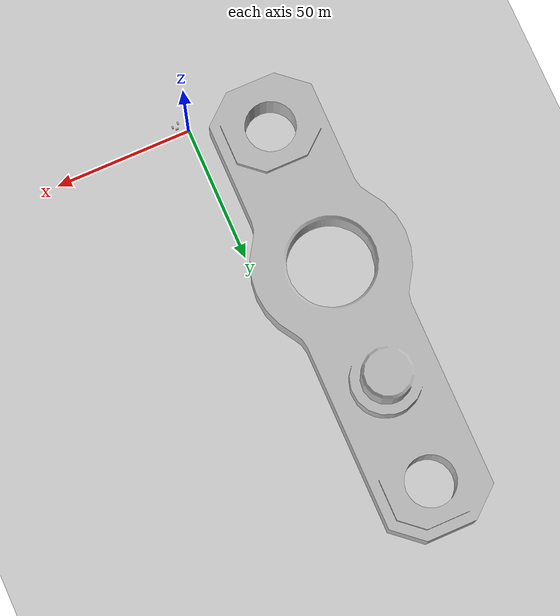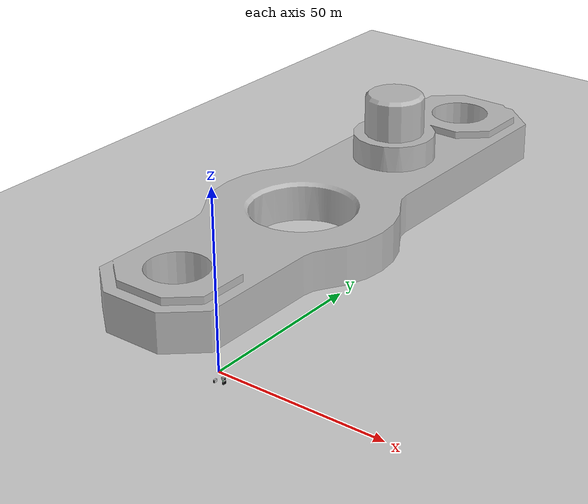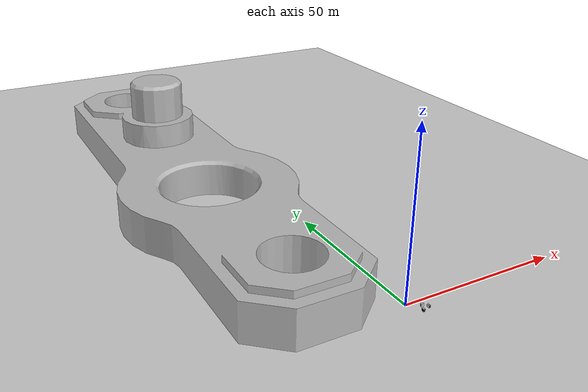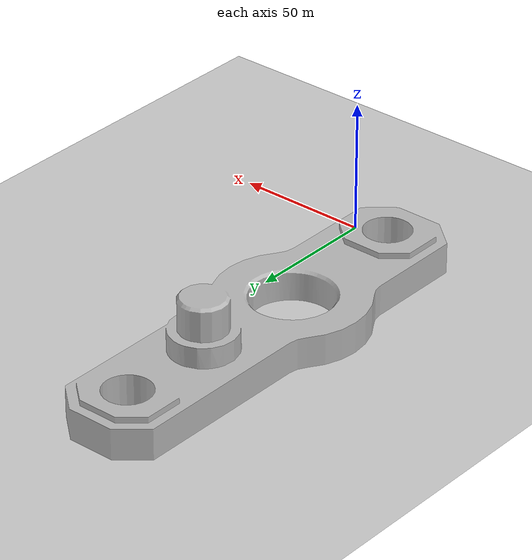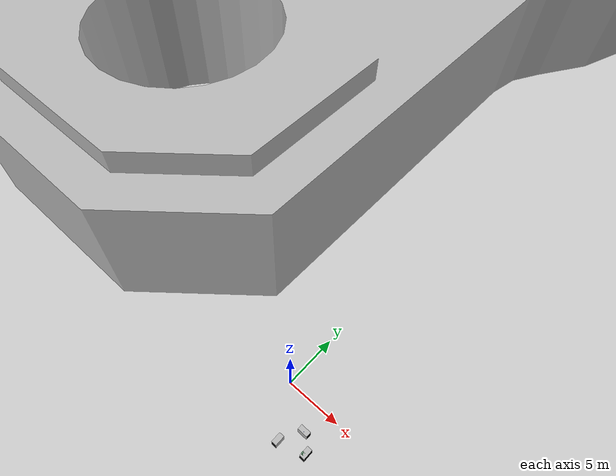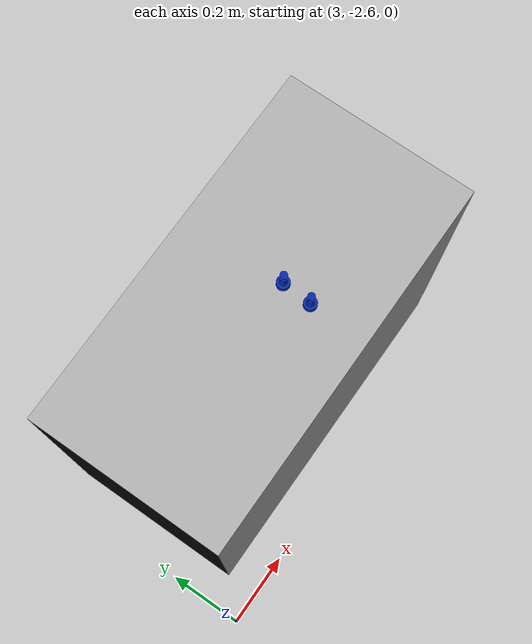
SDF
<sdf version="1.4">
 <world name="default">
  <include><uri>model://ground_plane</uri></include>
  <include>
   <uri>model://caddy_green</uri>
   <name>caddy_green1</name>
   <pose>4.609024 -3.594681 0.814290 0 0 0</pose>
  </include>
  <include>
   <uri>model://gearbox_bolt</uri>
   <name>gearbox_bolt1</name>
   <pose>3.604571 -2.373102 0.81 0 0 0</pose>
  </include>
  <include>
   <uri>model://gearbox_bolt</uri>
   <name>gearbox_bolt2</name>
   <pose>3.609393 -2.302640 0.81 0 0 0</pose>
  </include>
  <include>
   <uri>model://gearbox_top</uri>
   <name>gearbox_top1</name>
   <pose>2.497005 -4.123425 0.977855 0 0 1.57</pose>
  </include>
  <include>
   <uri>model://fetchit_table</uri>
   <name>screw_bin_pick_station</name>
   <pose>3.54929 -2.27837 0.0 0 0 0</pose>
  </include>
  <include>
   <uri>model://fetchit_table</uri>
   <name>kit_station</name>
   <pose>4.73491 -3.41284 0.0 0 0 -1.57</pose>
  </include>
  <include>
   <uri>model://fetchit_table</uri>
   <name>gearbox_pick_station</name>
   <pose>2.47048 -4.10962 0.0 0 0 1.57</pose>
  </include>
  <light name="user_point_light_0" type="point">
   <pose>5.3 -3.3 4.0 0 0 0</pose>
   <diffuse>0.2 0.2 0.2 1</diffuse>
   <specular>0.1 0.1 0.1 1</specular>
   <attenuation>
    <range>10</range>
    <constant>0.5</constant>
    <linear>0.01</linear>
    <quadratic>0.001</quadratic>
   </attenuation>
   <cast_shadows>0</cast_shadows>
   <direction>0 0 -1</direction>
  </light>
  <light name="user_point_light_1" type="point">
   <pose>2.0 -3.3 4.0 0 0 0</pose>
   <diffuse>0.2 0.2 0.2 1</diffuse>
   <specular>0.1 0.1 0.1 1</specular>
   <attenuation>
    <range>10</range>
    <constant>0.5</constant>
    <linear>0.01</linear>
    <quadratic>0.001</quadratic>
   </attenuation>
   <cast_shadows>0</cast_shadows>
   <direction>0 0 -1</direction>
  </light>
  <light name="user_point_light_2" type="point">
   <pose>-2.0 -3.3 4.0 0 0 0</pose>
   <diffuse>0.2 0.2 0.2 1</diffuse>
   <specular>0.1 0.1 0.1 1</specular>
   <attenuation>
    <range>10</range>
    <constant>0.5</constant>
    <linear>0.01</linear>
    <quadratic>0.001</quadratic>
   </attenuation>
   <cast_shadows>0</cast_shadows>
   <direction>0 0 -1</direction>
  </light>
  <light name="user_point_light_3" type="point">
   <pose>-5.3 -3.3 4.0 0 -0 0</pose>
   <diffuse>0.2 0.2 0.2 1</diffuse>
   <specular>0.1 0.1 0.1 1</specular>
   <attenuation>
    <range>10.0</range>
    <constant>0.5</constant>
    <linear>0.01</linear>
    <quadratic>0.001</quadratic>
   </attenuation>
   <cast_shadows>0</cast_shadows>
   <direction>0 0 -1</direction>
  </light>
  <light name="user_point_light_4" type="point">
   <pose>5.3 3.3 4.0 0 0 0</pose>
   <diffuse>0.2 0.2 0.2 1</diffuse>
   <specular>0.1 0.1 0.1 1</specular>
   <attenuation>
    <range>10.0</range>
    <constant>0.5</constant>
    <linear>0.01</linear>
    <quadratic>0.001</quadratic>
   </attenuation>
   <cast_shadows>0</cast_shadows>
   <direction>0 0 -1</direction>
  </light>
  <light name="user_point_light_5" type="point">
   <pose>2.0 3.3 4.0 0 0 0</pose>
   <diffuse>0.2 0.2 0.2 1</diffuse>
   <specular>0.1 0.1 0.1 1</specular>
   <attenuation>
    <range>10</range>
    <constant>0.5</constant>
    <linear>0.01</linear>
    <quadratic>0.001</quadratic>
   </attenuation>
   <cast_shadows>0</cast_shadows>
   <direction>0 0 -1</direction>
  </light>
  <light name="user_point_light_6" type="point">
   <pose>-2.0 3.3 4.0 0 0 0</pose>
   <diffuse>0.2 0.2 0.2 1</diffuse>
   <specular>0.1 0.1 0.1 1</specular>
   <attenuation>
    <range>10</range>
    <constant>0.5</constant>
    <linear>0.01</linear>
    <quadratic>0.001</quadratic>
   </attenuation>
   <cast_shadows>0</cast_shadows>
   <direction>0 0 -1</direction>
  </light>
  <light name="user_point_light_7" type="point">
   <pose>-5.3 3.3 4.0 0 -0 0</pose>
   <diffuse>0.2 0.2 0.2 1</diffuse>
   <specular>0.1 0.1 0.1 1</specular>
   <attenuation>
    <range>10</range>
    <constant>0.5</constant>
    <linear>0.01</linear>
    <quadratic>0.001</quadratic>
   </attenuation>
   <cast_shadows>0</cast_shadows>
   <direction>0 0 -1</direction>
  </light>
 </world>
</sdf>

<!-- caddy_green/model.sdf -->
<sdf version='1.4'>
  <model name="caddy_green">
      <static>0</static>
      <link name='link'>
        <inertial>
          <mass>0.0680389</mass>
          <inertia>
            <ixx>0.00040636575898</ixx>
            <ixy>0.000000</ixy>
            <ixz>0.000000</ixz>
            <iyy>0.00040636575898</iyy>
            <iyz>0.000000</iyz>
            <izz>0.000625974918075</izz>
          </inertia>
        </inertial>
        <collision name='collision'>
          <geometry>
            <mesh>
              <uri>model://romanoff_small_utility_caddy/meshes/Romanoff_Small_Utility_Caddy_cof.stl</uri>
              <scale>1 1 1</scale>
            </mesh>
          </geometry>
          <surface>
            <friction>
              <ode>
                <mu>1.0</mu>
                <mu2>1.0</mu2>
              </ode>
            </friction>
          </surface>
        </collision>

        <visual name='visual'>
          <geometry>
            <mesh>
              <uri>model://romanoff_small_utility_caddy/meshes/Romanoff_Small_Utility_Caddy_cof_green.dae</uri>
              <scale>1 1 1</scale>
            </mesh>
          </geometry>
        </visual>
        <velocity_decay>
          <linear>0.000000</linear>
          <angular>0.000000</angular>
        </velocity_decay>
        <self_collide>0</self_collide>
        <kinematic>0</kinematic>
        <gravity>1</gravity>
      </link>
  </model>
</sdf>

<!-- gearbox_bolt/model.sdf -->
<sdf version='1.4'>
  <model name="gearbox_bolt">
      <static>0</static>
      <link name='link'>
        <inertial>
          <mass>0.0592855</mass>
          <inertia>
            <ixx>2.31818050784e-05</ixx>
            <ixy>0.000000</ixy>
            <ixz>0.000000</ixz>
            <iyy>2.31851837098e-05</iyy>
            <iyz>0.000000</iyz>
            <izz>8.88944636856e-06</izz>
          </inertia>
        </inertial>
        <collision name='collision'>
          <geometry>
            <mesh>
              <uri>model://gearbox_bolt/meshes/gear_bolt_simple.stl</uri>
              <scale>1 1 1</scale>
            </mesh>
          </geometry>
          <surface>
            <friction>
              <ode>
                <mu>30.0</mu>
                <mu2>30.0</mu2>
              </ode>
            </friction>
          </surface>
        </collision>
        <visual name='visual'>
          <geometry>
            <mesh>
              <uri>model://gearbox_bolt/meshes/screw_v1.dae</uri>
              <scale>1 1 1</scale>
            </mesh>
          </geometry>
        </visual>
        <velocity_decay>
          <linear>0.000000</linear>
          <angular>0.000000</angular>
        </velocity_decay>
        <self_collide>0</self_collide>
        <kinematic>0</kinematic>
        <gravity>1</gravity>
      </link>
  </model>
</sdf>

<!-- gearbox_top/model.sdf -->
<sdf version='1.4'>
  <model name="gearbox_top">
      <static>0</static>
      <link name='link'>
        <inertial>
          <mass>0.2282587</mass>
          <inertia>
            <ixx>4.84526132205e-05</ixx>
            <ixy>0.000000</ixy>
            <ixz>0.000000</ixz>
            <iyy>0.000571913204992</iyy>
            <iyz>0.000000</iyz>
            <izz>0.000580776512074</izz>
          </inertia>
        </inertial>
        <collision name='collision'>
          <geometry>
            <mesh>
              <uri>model://gearbox_top/meshes/gearBoxTop_v3.stl</uri>
              <scale>1 1 1</scale>
            </mesh>
          </geometry>
          <surface>
            <friction>
              <ode>
                <mu>30.0</mu>
                <mu2>30.0</mu2>
              </ode>
            </friction>
          </surface>
        </collision>
        <visual name='visual'>
          <geometry>
            <mesh>
              <uri>model://gearbox_top/meshes/gearBoxTop_v3.dae</uri>
              <scale>1 1 1</scale>
            </mesh>
          </geometry>
        </visual>
        <velocity_decay>
          <linear>0.000000</linear>
          <angular>0.000000</angular>
        </velocity_decay>
        <self_collide>0</self_collide>
        <kinematic>0</kinematic>
        <gravity>1</gravity>
      </link>
  </model>
</sdf>

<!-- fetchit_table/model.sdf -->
<sdf version='1.4'>
  <model name="fetchit_table">
      <static>1</static>
      <link name='link'>
        <inertial>
          <mass>0.0592855</mass>
          <inertia>
            <ixx>2.31818050784e-05</ixx>
            <ixy>0.000000</ixy>
            <ixz>0.000000</ixz>
            <iyy>2.31851837098e-05</iyy>
            <iyz>0.000000</iyz>
            <izz>8.88944636856e-06</izz>
          </inertia>
        </inertial>
        <collision name='collision'>
          <geometry>
            <mesh>
              <uri>model://fetchit_table/meshes/fetchit_table.dae</uri>
              <scale>1 1 1</scale>
            </mesh>
          </geometry>
          <surface>
            <friction>
              <ode>
                <mu>30.0</mu>
                <mu2>30.0</mu2>
              </ode>
            </friction>
          </surface>
        </collision>
        <visual name='visual'>
          <geometry>
            <mesh>
              <uri>model://fetchit_table/meshes/fetchit_table.dae</uri>
              <scale>1 1 1</scale>
            </mesh>
          </geometry>
        </visual>
        <velocity_decay>
          <linear>0.000000</linear>
          <angular>0.000000</angular>
        </velocity_decay>
        <self_collide>0</self_collide>
        <kinematic>0</kinematic>
        <gravity>1</gravity>
      </link>
  </model>
</sdf>
